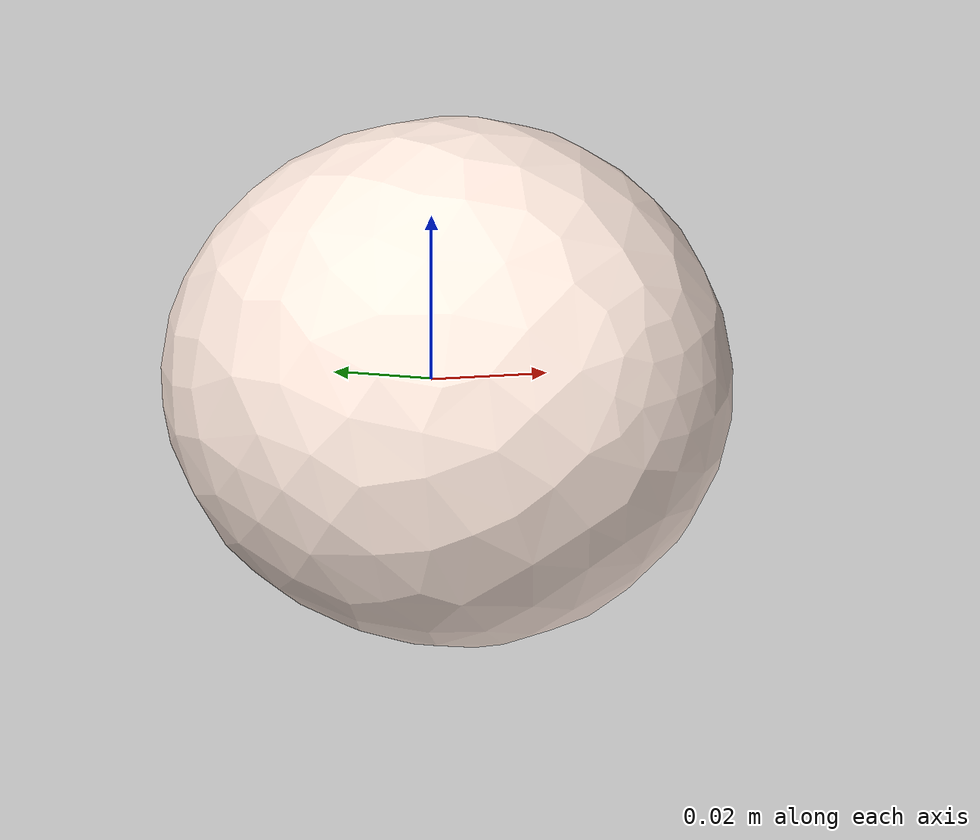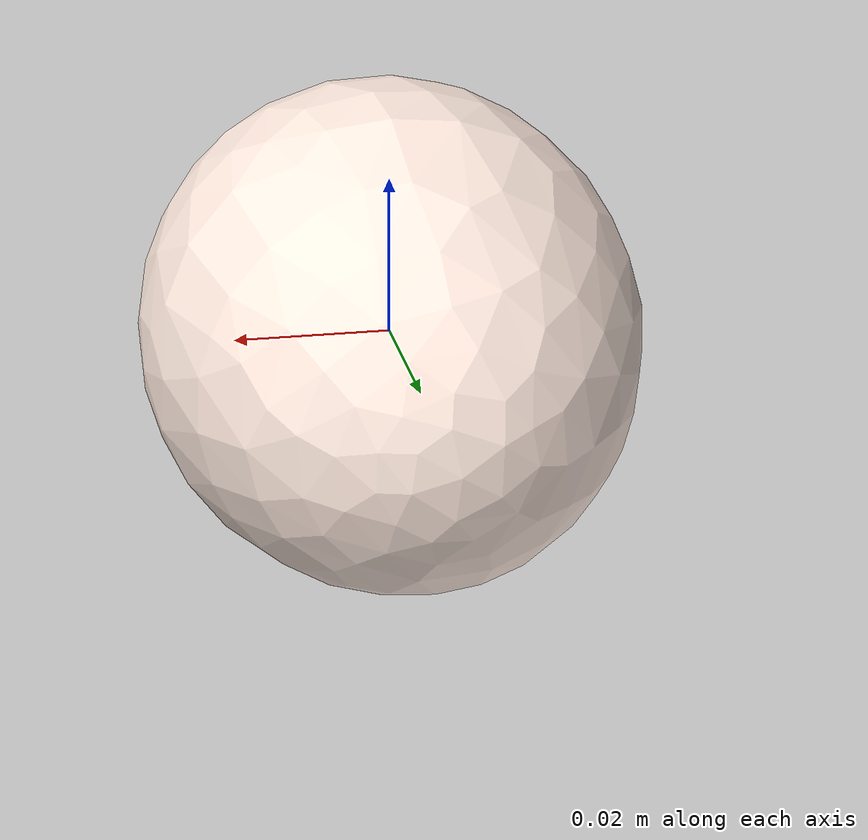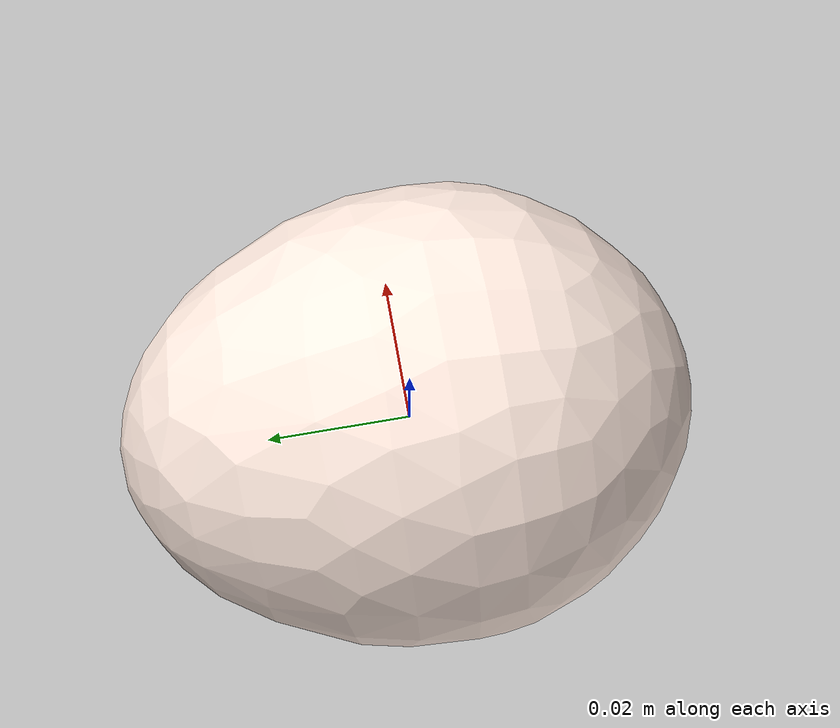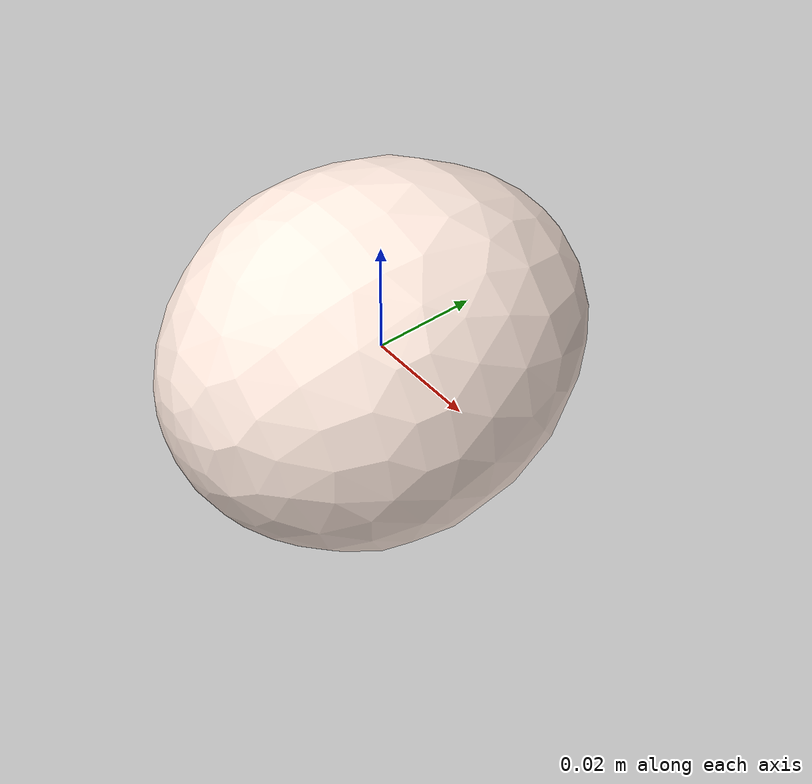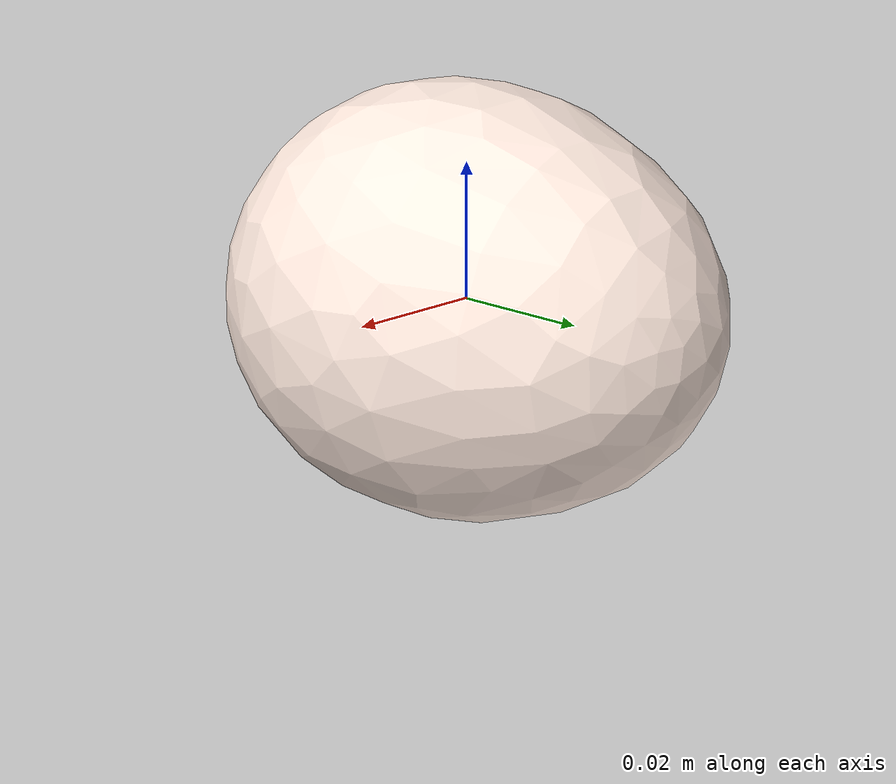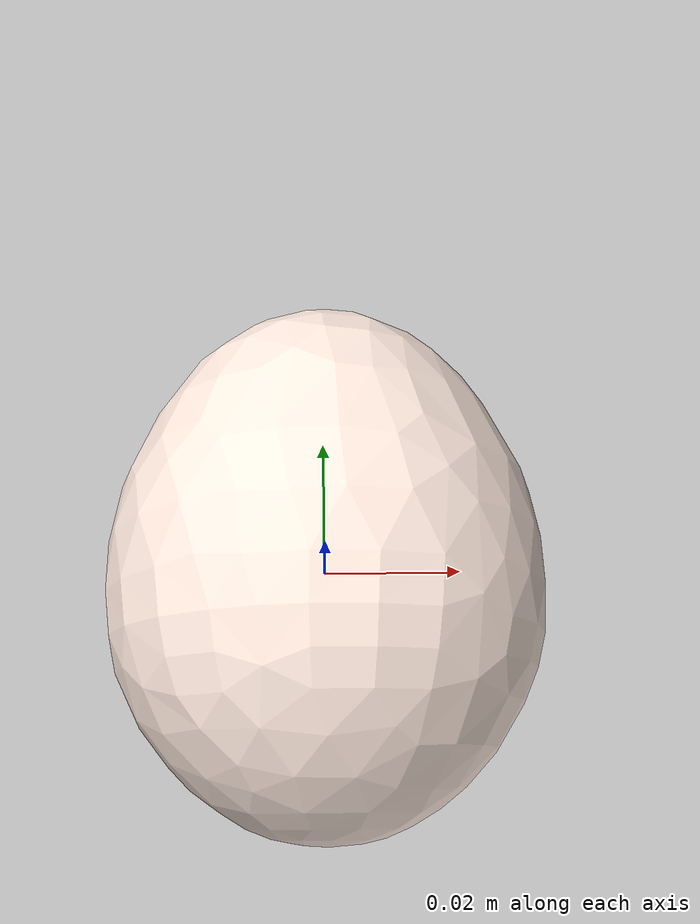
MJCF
<mujoco model="Egg_11">
  <compiler autolimits="true" boundmass="0.01" angle="radian"/>
  <default>
    <default class="/">
      <default class="__VISUAL_MJT__">
        <geom contype="0" conaffinity="0" group="0"/>
      </default>
      <default class="__STRUCTURAL_MJT__">
        <geom contype="8" conaffinity="15" group="4" friction="0.90000000000000002 0.90000000000000002 0.001" solref="0.025000000000000001 1" solimp="0.998 0.998 0.001"/>
      </default>
      <default class="__DYNAMIC_MJT__">
        <geom contype="1" conaffinity="15" group="4" friction="0.90000000000000002 0.90000000000000002 0.001" solref="0.025000000000000001 1" solimp="0.998 0.998 0.001"/>
      </default>
    </default>
  </default>
  <asset>
    <material name="material_Egg5_Mat" class="/" specular="0.5" shininess="0.5" rgba="1 0.91935489999999997 0.875 1"/>
    <mesh name="Egg_11_egg_11" class="/" file="Egg_11_egg_11/Egg_11_egg_11.obj" scale="1 1 1"/>
  </asset>
  <worldbody>
    <body name="Egg_11">
      <joint name="Egg_11_free" class="/" type="free" pos="0 0 0" axis="0 0 1" stiffness="0" range="0 0" armature="0" damping="0.10000000000000001" frictionloss="0"/>
      <body name="Egg_11_egg_11" pos="-0 0 -0.0001" quat="1 0 0 0">
        <geom name="Egg_11_egg_11" class="__VISUAL_MJT__" type="mesh" material="material_Egg5_Mat" shellinertia="true" mesh="Egg_11_egg_11"/>
        <geom name="Egg_11_PrimitiveCollider_0" class="__DYNAMIC_MJT__" type="capsule" size="0.026480577886104584 0.01060885563492775" rgba="0 1 0 1" pos="-0 0 0" quat="0.70710678118654757 0.70710678118654746 0 0"/>
      </body>
    </body>
  </worldbody>
</mujoco>
